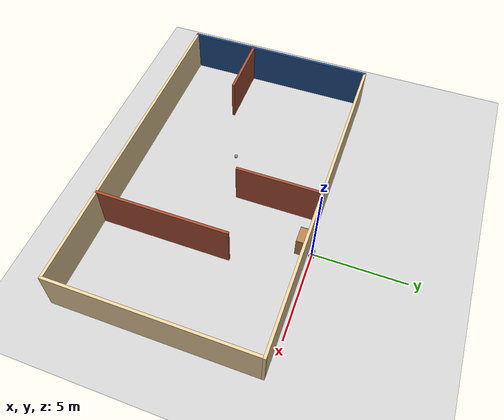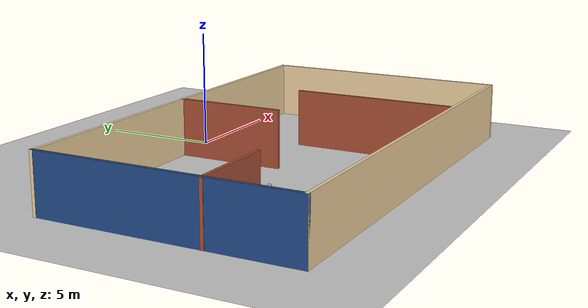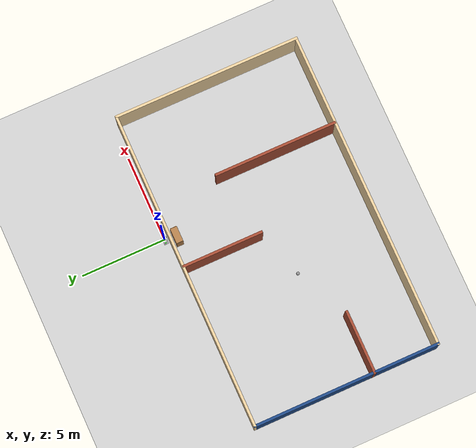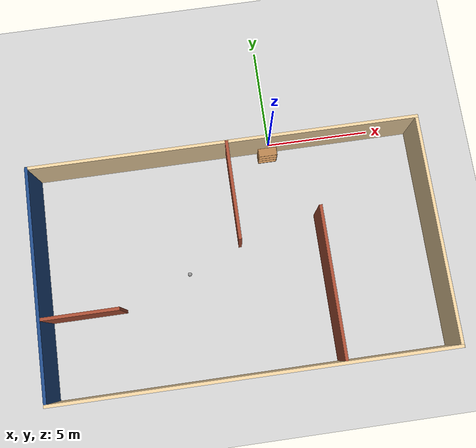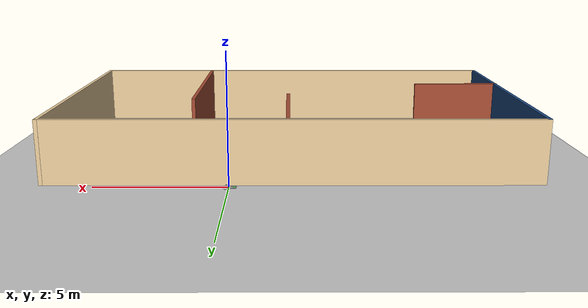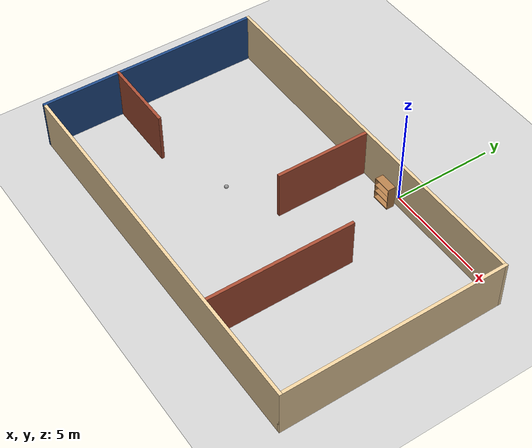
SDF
<sdf version="1.6">
 <world name="default">
  <model name="ground_plane">
   <static>1</static>
   <link name="link">
    <collision name="collision">
     <geometry><plane><normal>0 0 1</normal><size>100 100</size></plane></geometry>
     <surface>
      <contact><collide_bitmask>65535</collide_bitmask></contact>
      <friction><ode><mu>100</mu><mu2>50</mu2></ode></friction>
     </surface>
    </collision>
    <visual name="visual">
     <cast_shadows>0</cast_shadows>
     <geometry><plane><normal>0 0 1</normal><size>100 100</size></plane></geometry>
     <material>
      <script><uri>file://media/materials/scripts/gazebo.material</uri><name>Gazebo/Grey</name></script>
     </material>
    </visual>
   </link>
  </model>
  <model name="Velubot">
   <link name="link_1">
    <inertial>
     <mass>1</mass>
     <inertia>
      <ixx>0.166667</ixx>
      <ixy>0</ixy>
      <ixz>0</ixz>
      <iyy>0.166667</iyy>
      <iyz>0</iyz>
      <izz>0.166667</izz>
     </inertia>
    </inertial>
    <pose>-0.0275 -0.004371 0.002125 0 -0 0</pose>
    <visual name="visual">
     <geometry><box><size>0.5 0.25 0.01</size></box></geometry>
     <material>
      <lighting>1</lighting>
      <script><uri>file://media/materials/scripts/gazebo.material</uri><name>Gazebo/Grey</name></script>
      <shader type="vertex"><normal_map>__default__</normal_map></shader>
      <ambient>0.3 0.3 0.3 1</ambient>
      <diffuse>0.7 0.7 0.7 1</diffuse>
      <specular>0.01 0.01 0.01 1</specular>
      <emissive>0 0 0 1</emissive>
     </material>
    </visual>
    <collision name="collision">
     <geometry><box><size>0.5 0.25 0.01</size></box></geometry>
     <surface>
      <friction>
       <ode><mu>1</mu><mu2>1</mu2><fdir1>0 0 0</fdir1><slip1>0</slip1><slip2>0</slip2></ode>
       <torsional>
        <coefficient>1</coefficient>
        <patch_radius>0</patch_radius>
        <surface_radius>0</surface_radius>
        <use_patch_radius>1</use_patch_radius>
        <ode><slip>0</slip></ode>
       </torsional>
      </friction>
      <bounce><restitution_coefficient>0</restitution_coefficient><threshold>1e+06</threshold></bounce>
      <contact>
       <collide_without_contact>0</collide_without_contact>
       <collide_without_contact_bitmask>1</collide_without_contact_bitmask>
       <collide_bitmask>1</collide_bitmask>
       <ode>
        <soft_cfm>0</soft_cfm>
        <soft_erp>0.2</soft_erp>
        <kp>1e+13</kp>
        <kd>1</kd>
        <max_vel>0.01</max_vel>
        <min_depth>0</min_depth>
       </ode>
       <bullet>
        <split_impulse>1</split_impulse>
        <split_impulse_penetration_threshold>-0.01</split_impulse_penetration_threshold>
        <soft_cfm>0</soft_cfm>
        <soft_erp>0.2</soft_erp>
        <kp>1e+13</kp>
        <kd>1</kd>
       </bullet>
      </contact>
     </surface>
    </collision>
   </link>
   <link name="link_2">
    <inertial>
     <mass>1</mass>
     <inertia><ixx>0.1</ixx><ixy>0</ixy><ixz>0</ixz><iyy>0.1</iyy><iyz>0</iyz><izz>0.1</izz></inertia>
    </inertial>
    <pose>-0.1975 0.00813 -0.006375 0 -0 0</pose>
    <visual name="visual">
     <geometry><sphere><radius>0.05</radius></sphere></geometry>
     <material>
      <lighting>1</lighting>
      <script><uri>file://media/materials/scripts/gazebo.material</uri><name>Gazebo/Grey</name></script>
      <shader type="vertex"><normal_map>__default__</normal_map></shader>
      <ambient>0.3 1 0.3 1</ambient>
      <diffuse>0.7 0.7 0.7 1</diffuse>
      <specular>0.01 0.01 0.01 1</specular>
      <emissive>0 0 0 1</emissive>
     </material>
    </visual>
    <collision name="collision">
     <geometry><sphere><radius>0.05</radius></sphere></geometry>
     <surface>
      <friction>
       <ode><mu>1</mu><mu2>1</mu2><fdir1>0 0 0</fdir1><slip1>0</slip1><slip2>0</slip2></ode>
       <torsional>
        <coefficient>1</coefficient>
        <patch_radius>0</patch_radius>
        <surface_radius>0</surface_radius>
        <use_patch_radius>1</use_patch_radius>
        <ode><slip>0</slip></ode>
       </torsional>
      </friction>
      <bounce><restitution_coefficient>0</restitution_coefficient><threshold>1e+06</threshold></bounce>
      <contact>
       <collide_without_contact>0</collide_without_contact>
       <collide_without_contact_bitmask>1</collide_without_contact_bitmask>
       <collide_bitmask>1</collide_bitmask>
       <ode>
        <soft_cfm>0</soft_cfm>
        <soft_erp>0.2</soft_erp>
        <kp>1e+13</kp>
        <kd>1</kd>
        <max_vel>0.01</max_vel>
        <min_depth>0</min_depth>
       </ode>
       <bullet>
        <split_impulse>1</split_impulse>
        <split_impulse_penetration_threshold>-0.01</split_impulse_penetration_threshold>
        <soft_cfm>0</soft_cfm>
        <soft_erp>0.2</soft_erp>
        <kp>1e+13</kp>
        <kd>1</kd>
       </bullet>
      </contact>
     </surface>
    </collision>
   </link>
   <link name="link_3">
    <inertial>
     <mass>1</mass>
     <inertia><ixx>0.145833</ixx><ixy>0</ixy><ixz>0</ixz><iyy>0.145833</iyy><iyz>0</iyz><izz>0.125</izz></inertia>
    </inertial>
    <pose>0.1125 0.140617 0.002125 1.5707 -0 0</pose>
    <visual name="visual">
     <geometry><cylinder><radius>0.05</radius><length>0.03</length></cylinder></geometry>
     <material>
      <lighting>1</lighting>
      <script><uri>file://media/materials/scripts/gazebo.material</uri><name>Gazebo/Grey</name></script>
      <shader type="vertex"><normal_map>__default__</normal_map></shader>
      <ambient>0 0 0 1</ambient>
      <diffuse>0.7 0.7 0.7 1</diffuse>
      <specular>0.01 0.01 0.01 1</specular>
      <emissive>0 0 0 1</emissive>
     </material>
    </visual>
    <collision name="collision">
     <geometry><cylinder><radius>0.05</radius><length>0.03</length></cylinder></geometry>
     <surface>
      <friction>
       <ode><mu>1</mu><mu2>1</mu2><fdir1>0 0 0</fdir1><slip1>0</slip1><slip2>0</slip2></ode>
       <torsional>
        <coefficient>1</coefficient>
        <patch_radius>0</patch_radius>
        <surface_radius>0</surface_radius>
        <use_patch_radius>1</use_patch_radius>
        <ode><slip>0</slip></ode>
       </torsional>
      </friction>
      <bounce><restitution_coefficient>0</restitution_coefficient><threshold>1e+06</threshold></bounce>
      <contact>
       <collide_without_contact>0</collide_without_contact>
       <collide_without_contact_bitmask>1</collide_without_contact_bitmask>
       <collide_bitmask>1</collide_bitmask>
       <ode>
        <soft_cfm>0</soft_cfm>
        <soft_erp>0.2</soft_erp>
        <kp>1e+13</kp>
        <kd>1</kd>
        <max_vel>0.01</max_vel>
        <min_depth>0</min_depth>
       </ode>
       <bullet>
        <split_impulse>1</split_impulse>
        <split_impulse_penetration_threshold>-0.01</split_impulse_penetration_threshold>
        <soft_cfm>0</soft_cfm>
        <soft_erp>0.2</soft_erp>
        <kp>1e+13</kp>
        <kd>1</kd>
       </bullet>
      </contact>
     </surface>
    </collision>
   </link>
   <link name="link_3_clone">
    <inertial>
     <mass>1</mass>
     <inertia><ixx>0.145833</ixx><ixy>0</ixy><ixz>0</ixz><iyy>0.145833</iyy><iyz>0</iyz><izz>0.125</izz></inertia>
    </inertial>
    <pose>0.1125 -0.144376 0.002125 1.5707 -0 0</pose>
    <visual name="visual">
     <geometry><cylinder><radius>0.05</radius><length>0.03</length></cylinder></geometry>
     <material>
      <lighting>1</lighting>
      <script><uri>file://media/materials/scripts/gazebo.material</uri><name>Gazebo/Grey</name></script>
      <shader type="vertex"><normal_map>__default__</normal_map></shader>
      <ambient>0 0 0 1</ambient>
      <diffuse>0.7 0.7 0.7 1</diffuse>
      <specular>0.01 0.01 0.01 1</specular>
      <emissive>0 0 0 1</emissive>
     </material>
    </visual>
    <collision name="collision">
     <geometry><cylinder><radius>0.05</radius><length>0.03</length></cylinder></geometry>
     <surface>
      <friction>
       <ode><mu>1</mu><mu2>1</mu2><fdir1>0 0 0</fdir1><slip1>0</slip1><slip2>0</slip2></ode>
       <torsional>
        <coefficient>1</coefficient>
        <patch_radius>0</patch_radius>
        <surface_radius>0</surface_radius>
        <use_patch_radius>1</use_patch_radius>
        <ode><slip>0</slip></ode>
       </torsional>
      </friction>
      <bounce><restitution_coefficient>0</restitution_coefficient><threshold>1e+06</threshold></bounce>
      <contact>
       <collide_without_contact>0</collide_without_contact>
       <collide_without_contact_bitmask>1</collide_without_contact_bitmask>
       <collide_bitmask>1</collide_bitmask>
       <ode>
        <soft_cfm>0</soft_cfm>
        <soft_erp>0.2</soft_erp>
        <kp>1e+13</kp>
        <kd>1</kd>
        <max_vel>0.01</max_vel>
        <min_depth>0</min_depth>
       </ode>
       <bullet>
        <split_impulse>1</split_impulse>
        <split_impulse_penetration_threshold>-0.01</split_impulse_penetration_threshold>
        <soft_cfm>0</soft_cfm>
        <soft_erp>0.2</soft_erp>
        <kp>1e+13</kp>
        <kd>1</kd>
       </bullet>
      </contact>
     </surface>
    </collision>
   </link>
   <joint name="link_1_JOINT_0" type="revolute2">
    <parent>link_1</parent>
    <child>link_2</child>
    <axis>
     <xyz>1 0 0</xyz>
     <use_parent_model_frame>0</use_parent_model_frame>
     <limit>
      <lower>-1.79769e+308</lower>
      <upper>1.79769e+308</upper>
      <effort>-1</effort>
      <velocity>-1</velocity>
     </limit>
     <dynamics>
      <spring_reference>0</spring_reference>
      <spring_stiffness>0</spring_stiffness>
      <damping>0</damping>
     </dynamics>
    </axis>
    <axis2>
     <xyz>0 1 0</xyz>
     <use_parent_model_frame>0</use_parent_model_frame>
     <dynamics>
      <spring_reference>0</spring_reference>
      <spring_stiffness>0</spring_stiffness>
      <damping>0</damping>
     </dynamics>
     <limit>
      <lower>-1.79769e+308</lower>
      <upper>1.79769e+308</upper>
      <effort>-1</effort>
      <velocity>-1</velocity>
     </limit>
    </axis2>
    <physics>
     <ode><limit><cfm>0</cfm><erp>0.2</erp></limit><suspension><cfm>0</cfm><erp>0.2</erp></suspension></ode>
    </physics>
   </joint>
   <joint name="link_1_JOINT_1" type="revolute">
    <parent>link_1</parent>
    <child>link_3</child>
    <axis>
     <xyz>0 0 1</xyz>
     <use_parent_model_frame>0</use_parent_model_frame>
     <limit>
      <lower>-1.79769e+308</lower>
      <upper>1.79769e+308</upper>
      <effort>-1</effort>
      <velocity>-1</velocity>
     </limit>
     <dynamics>
      <spring_reference>0</spring_reference>
      <spring_stiffness>0</spring_stiffness>
      <damping>0</damping>
     </dynamics>
    </axis>
    <physics>
     <ode><limit><cfm>0</cfm><erp>0.2</erp></limit><suspension><cfm>0</cfm><erp>0.2</erp></suspension></ode>
    </physics>
   </joint>
   <joint name="link_1_JOINT_2" type="revolute">
    <parent>link_1</parent>
    <child>link_3_clone</child>
    <axis>
     <xyz>0 0 1</xyz>
     <use_parent_model_frame>0</use_parent_model_frame>
     <limit>
      <lower>-1.79769e+308</lower>
      <upper>1.79769e+308</upper>
      <effort>-1</effort>
      <velocity>-1</velocity>
     </limit>
     <dynamics>
      <spring_reference>0</spring_reference>
      <spring_stiffness>0</spring_stiffness>
      <damping>0</damping>
     </dynamics>
    </axis>
    <physics>
     <ode><limit><cfm>0</cfm><erp>0.2</erp></limit><suspension><cfm>0</cfm><erp>0.2</erp></suspension></ode>
    </physics>
   </joint>
   <static>0</static>
  </model>
  <model name="Building_A">
   <pose>-2.345 -5.705 0 0 -0 0</pose>
   <link name="Wall_0">
    <collision name="Wall_0_Collision">
     <geometry><box><size>11 0.15 2.5</size></box></geometry>
     <pose>0 0 1.25 0 -0 0</pose>
    </collision>
    <visual name="Wall_0_Visual">
     <pose>0 0 1.25 0 -0 0</pose>
     <geometry><box><size>11 0.15 2.5</size></box></geometry>
     <material>
      <script><uri>file://media/materials/scripts/gazebo.material</uri><name>Gazebo/Grey</name></script>
      <ambient>0.12549 0.290196 0.529412 1</ambient>
     </material>
     <meta><layer>0</layer></meta>
    </visual>
    <pose>-9.295 -0 0 0 -0 -1.5708</pose>
   </link>
   <link name="Wall_1">
    <collision name="Wall_1_Collision">
     <geometry><box><size>18.75 0.15 2.5</size></box></geometry>
     <pose>0 0 1.25 0 -0 0</pose>
    </collision>
    <visual name="Wall_1_Visual">
     <pose>0 0 1.25 0 -0 0</pose>
     <geometry><box><size>18.75 0.15 2.5</size></box></geometry>
     <material>
      <script><uri>file://media/materials/scripts/gazebo.material</uri><name>Gazebo/Grey</name></script>
      <ambient>0.921569 0.807843 0.615686 1</ambient>
     </material>
     <meta><layer>0</layer></meta>
    </visual>
    <pose>0.005 -5.425 0 0 -0 0</pose>
   </link>
   <link name="Wall_2">
    <collision name="Wall_2_Collision">
     <geometry><box><size>11 0.15 2.5</size></box></geometry>
     <pose>0 0 1.25 0 -0 0</pose>
    </collision>
    <visual name="Wall_2_Visual">
     <pose>0 0 1.25 0 -0 0</pose>
     <geometry><box><size>11 0.15 2.5</size></box></geometry>
     <material>
      <script><uri>file://media/materials/scripts/gazebo.material</uri><name>Gazebo/Grey</name></script>
      <ambient>0.921569 0.807843 0.615686 1</ambient>
     </material>
     <meta><layer>0</layer></meta>
    </visual>
    <pose>9.305 -0 0 0 -0 1.5708</pose>
   </link>
   <link name="Wall_3">
    <collision name="Wall_3_Collision">
     <geometry><box><size>18.75 0.15 2.5</size></box></geometry>
     <pose>0 0 1.25 0 -0 0</pose>
    </collision>
    <visual name="Wall_3_Visual">
     <pose>0 0 1.25 0 -0 0</pose>
     <geometry><box><size>18.75 0.15 2.5</size></box></geometry>
     <material>
      <script><uri>file://media/materials/scripts/gazebo.material</uri><name>Gazebo/Grey</name></script>
      <ambient>0.921569 0.807843 0.615686 1</ambient>
     </material>
     <meta><layer>0</layer></meta>
    </visual>
    <pose>0.005 5.425 0 0 -0 3.14159</pose>
   </link>
   <link name="Wall_5">
    <collision name="Wall_5_Collision">
     <geometry><box><size>4.75 0.15 2.5</size></box></geometry>
     <pose>0 0 1.25 0 -0 0</pose>
    </collision>
    <visual name="Wall_5_Visual">
     <pose>0 0 1.25 0 -0 0</pose>
     <geometry><box><size>4.75 0.15 2.5</size></box></geometry>
     <material>
      <script><uri>file://media/materials/scripts/gazebo.material</uri><name>Gazebo/Bricks</name></script>
      <ambient>1 1 1 1</ambient>
     </material>
     <meta><layer>0</layer></meta>
    </visual>
    <pose>0.185 3.095 0 0 -0 -1.5708</pose>
   </link>
   <link name="Wall_7">
    <collision name="Wall_7_Collision">
     <geometry><box><size>7.25 0.15 2.5</size></box></geometry>
     <pose>0 0 1.25 0 -0 0</pose>
    </collision>
    <visual name="Wall_7_Visual">
     <pose>0 0 1.25 0 -0 0</pose>
     <geometry><box><size>7.25 0.15 2.5</size></box></geometry>
     <material>
      <script><uri>file://media/materials/scripts/gazebo.material</uri><name>Gazebo/Bricks</name></script>
      <ambient>1 1 1 1</ambient>
     </material>
     <meta><layer>0</layer></meta>
    </visual>
    <pose>4.095 -1.825 0 0 -0 -1.5708</pose>
   </link>
   <link name="Wall_9">
    <collision name="Wall_9_Collision">
     <geometry><box><size>3.75 0.15 2.5</size></box></geometry>
     <pose>0 0 1.25 0 -0 0</pose>
    </collision>
    <visual name="Wall_9_Visual">
     <pose>0 0 1.25 0 -0 0</pose>
     <geometry><box><size>3.75 0.15 2.5</size></box></geometry>
     <material>
      <script><uri>file://media/materials/scripts/gazebo.material</uri><name>Gazebo/Bricks</name></script>
      <ambient>1 1 1 1</ambient>
     </material>
     <meta><layer>0</layer></meta>
    </visual>
    <pose>-7.505 -1.645 0 0 -0 0</pose>
   </link>
   <static>1</static>
  </model>
  <model name="bookshelf">
   <static>1</static>
   <link name="link">
    <inertial><mass>1</mass></inertial>
    <collision name="back">
     <pose>0 0.005 0.6 0 -0 0</pose>
     <geometry><box><size>0.9 0.01 1.2</size></box></geometry>
    </collision>
    <visual name="visual1">
     <pose>0 0.005 0.6 0 -0 0</pose>
     <geometry><box><size>0.9 0.01 1.2</size></box></geometry>
     <material>
      <script><uri>file://media/materials/scripts/gazebo.material</uri><name>Gazebo/Wood</name></script>
     </material>
    </visual>
    <collision name="left_side">
     <pose>0.45 -0.195 0.6 0 -0 0</pose>
     <geometry><box><size>0.02 0.4 1.2</size></box></geometry>
    </collision>
    <visual name="visual2">
     <pose>0.45 -0.195 0.6 0 -0 0</pose>
     <geometry><box><size>0.02 0.4 1.2</size></box></geometry>
     <material>
      <script><uri>file://media/materials/scripts/gazebo.material</uri><name>Gazebo/Wood</name></script>
     </material>
    </visual>
    <collision name="right_side">
     <pose>-0.45 -0.195 0.6 0 -0 0</pose>
     <geometry><box><size>0.02 0.4 1.2</size></box></geometry>
    </collision>
    <visual name="visual3">
     <pose>-0.45 -0.195 0.6 0 -0 0</pose>
     <geometry><box><size>0.02 0.4 1.2</size></box></geometry>
     <material>
      <script><uri>file://media/materials/scripts/gazebo.material</uri><name>Gazebo/Wood</name></script>
     </material>
    </visual>
    <collision name="bottom">
     <pose>0 -0.195 0.03 0 -0 0</pose>
     <geometry><box><size>0.88 0.4 0.06</size></box></geometry>
    </collision>
    <visual name="visual4">
     <pose>0 -0.195 0.03 0 -0 0</pose>
     <geometry><box><size>0.88 0.4 0.06</size></box></geometry>
     <material>
      <script><uri>file://media/materials/scripts/gazebo.material</uri><name>Gazebo/Wood</name></script>
     </material>
    </visual>
    <collision name="top">
     <pose>0 -0.195 1.19 0 -0 0</pose>
     <geometry><box><size>0.88 0.4 0.02</size></box></geometry>
    </collision>
    <visual name="visual5">
     <pose>0 -0.195 1.19 0 -0 0</pose>
     <geometry><box><size>0.88 0.4 0.02</size></box></geometry>
     <material>
      <script><uri>file://media/materials/scripts/gazebo.material</uri><name>Gazebo/Wood</name></script>
     </material>
    </visual>
    <collision name="low_shelf">
     <pose>0 -0.195 0.43 0 -0 0</pose>
     <geometry><box><size>0.88 0.4 0.02</size></box></geometry>
    </collision>
    <visual name="visual6">
     <pose>0 -0.195 0.43 0 -0 0</pose>
     <geometry><box><size>0.88 0.4 0.02</size></box></geometry>
     <material>
      <script><uri>file://media/materials/scripts/gazebo.material</uri><name>Gazebo/Wood</name></script>
     </material>
    </visual>
    <collision name="high_shelf">
     <pose>0 -0.195 0.8 0 -0 0</pose>
     <geometry><box><size>0.88 0.4 0.02</size></box></geometry>
    </collision>
    <visual name="visual7">
     <pose>0 -0.195 0.8 0 -0 0</pose>
     <geometry><box><size>0.88 0.4 0.02</size></box></geometry>
     <material>
      <script><uri>file://media/materials/scripts/gazebo.material</uri><name>Gazebo/Wood</name></script>
     </material>
    </visual>
   </link>
   <pose>-0.204511 -0.487862 0 0 -0 0</pose>
  </model>
  <model name="my_ball">
   <link name="link_0">
    <inertial>
     <mass>1</mass>
     <inertia><ixx>0.1</ixx><ixy>0</ixy><ixz>0</ixz><iyy>0.1</iyy><iyz>0</iyz><izz>0.1</izz></inertia>
    </inertial>
    <visual name="visual">
     <geometry><sphere><radius>0.1</radius></sphere></geometry>
     <material>
      <lighting>1</lighting>
      <script><uri>file://media/materials/scripts/gazebo.material</uri><name>Gazebo/Grey</name></script>
      <shader type="vertex"><normal_map>__default__</normal_map></shader>
      <ambient>1 1 1 1</ambient>
      <diffuse>1 1 1 1</diffuse>
      <specular>1 1 1 1</specular>
      <emissive>1 1 1 1</emissive>
     </material>
    </visual>
    <collision name="collision">
     <geometry><sphere><radius>0.1</radius></sphere></geometry>
     <surface>
      <friction>
       <ode><mu>1</mu><mu2>1</mu2><fdir1>0 0 0</fdir1><slip1>0</slip1><slip2>0</slip2></ode>
       <torsional>
        <coefficient>1</coefficient>
        <patch_radius>0</patch_radius>
        <surface_radius>0</surface_radius>
        <use_patch_radius>1</use_patch_radius>
        <ode><slip>0</slip></ode>
       </torsional>
      </friction>
      <bounce><restitution_coefficient>0</restitution_coefficient><threshold>1e+06</threshold></bounce>
      <contact>
       <collide_without_contact>0</collide_without_contact>
       <collide_without_contact_bitmask>1</collide_without_contact_bitmask>
       <collide_bitmask>1</collide_bitmask>
       <ode>
        <soft_cfm>0</soft_cfm>
        <soft_erp>0.2</soft_erp>
        <kp>1e+13</kp>
        <kd>1</kd>
        <max_vel>0.01</max_vel>
        <min_depth>0</min_depth>
       </ode>
       <bullet>
        <split_impulse>1</split_impulse>
        <split_impulse_penetration_threshold>-0.01</split_impulse_penetration_threshold>
        <soft_cfm>0</soft_cfm>
        <soft_erp>0.2</soft_erp>
        <kp>1e+13</kp>
        <kd>1</kd>
       </bullet>
      </contact>
     </surface>
    </collision>
   </link>
   <static>0</static>
   <pose>-4.78321 -5.98706 0.1 0 -0 0</pose>
  </model>
 </world>
</sdf>
